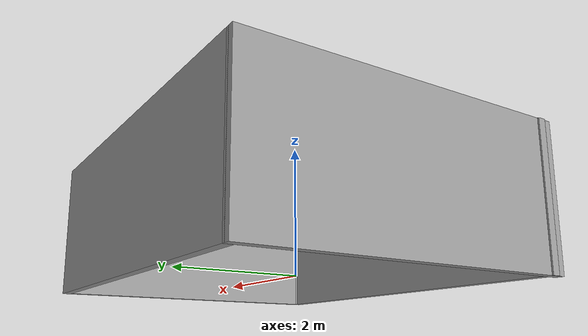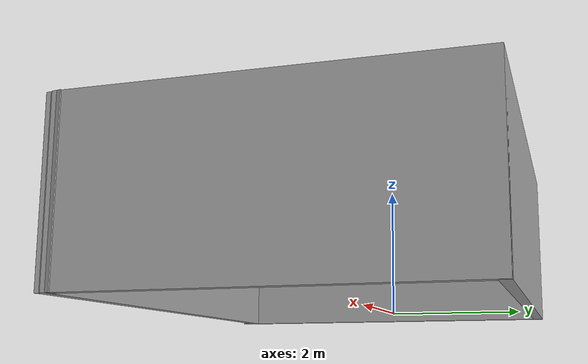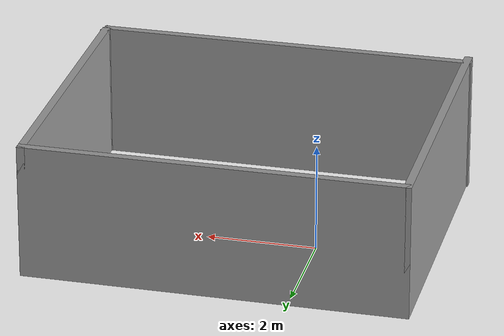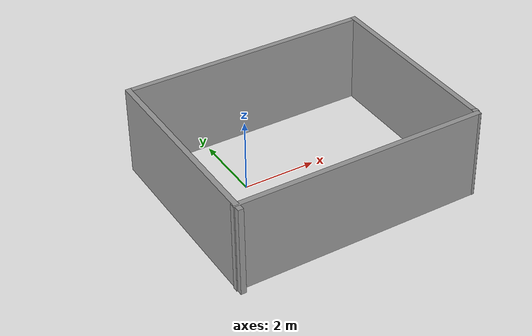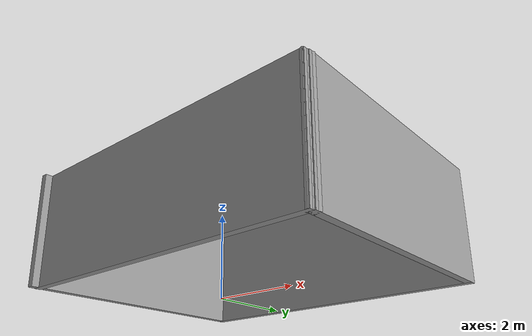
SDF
<?xml version='1.0'?>
<sdf version='1.6'>
  <model name='trial_2'>
    <pose frame=''>1.34049 -0.6 0 0 -0 0</pose>
    <link name='Wall_0'>
      <collision name='Wall_0_Collision'>
        <geometry>
          <box>
            <size>5.75 0.15 2.5</size>
          </box>
        </geometry>
        <pose frame=''>0 0 1.25 0 -0 0</pose>
      </collision>
      <visual name='Wall_0_Visual'>
        <pose frame=''>0 0 1.25 0 -0 0</pose>
        <geometry>
          <box>
            <size>5.75 0.15 2.5</size>
          </box>
        </geometry>
        <material>
          <script>
            <uri>file://media/materials/scripts/gazebo.material</uri>
            <name>Gazebo/Grey</name>
          </script>
          <ambient>1 1 1 1</ambient>
        </material>
        <meta>
          <layer>0</layer>
        </meta>
      </visual>
      <pose frame=''>-3.42049 0 0 0 -0 1.5708</pose>
    </link>
    <link name='Wall_1'>
      <collision name='Wall_1_Collision'>
        <geometry>
          <box>
            <size>7 0.15 2.5</size>
          </box>
        </geometry>
        <pose frame=''>0 0 1.25 0 -0 0</pose>
      </collision>
      <visual name='Wall_1_Visual'>
        <pose frame=''>0 0 1.25 0 -0 0</pose>
        <geometry>
          <box>
            <size>7 0.15 2.5</size>
          </box>
        </geometry>
        <material>
          <script>
            <uri>file://media/materials/scripts/gazebo.material</uri>
            <name>Gazebo/Grey</name>
          </script>
          <ambient>1 1 1 1</ambient>
        </material>
        <meta>
          <layer>0</layer>
        </meta>
      </visual>
      <pose frame=''>0.004513 2.8 0 0 -0 0</pose>
    </link>
    <link name='Wall_2'>
      <collision name='Wall_2_Collision'>
        <geometry>
          <box>
            <size>5.5 0.15 2.5</size>
          </box>
        </geometry>
        <pose frame=''>0 0 1.25 0 -0 0</pose>
      </collision>
      <visual name='Wall_2_Visual'>
        <pose frame=''>0 0 1.25 0 -0 0</pose>
        <geometry>
          <box>
            <size>5.5 0.15 2.5</size>
          </box>
        </geometry>
        <material>
          <script>
            <uri>file://media/materials/scripts/gazebo.material</uri>
            <name>Gazebo/Grey</name>
          </script>
          <ambient>1 1 1 1</ambient>
        </material>
        <meta>
          <layer>0</layer>
        </meta>
      </visual>
      <pose frame=''>3.42951 0.125 0 0 -0 -1.5708</pose>
    </link>
    <link name='Wall_3'>
      <collision name='Wall_3_Collision'>
        <geometry>
          <box>
            <size>0.25 0.15 2.5</size>
          </box>
        </geometry>
        <pose frame=''>0 0 1.25 0 -0 0</pose>
      </collision>
      <visual name='Wall_3_Visual'>
        <pose frame=''>0 0 1.25 0 -0 0</pose>
        <geometry>
          <box>
            <size>0.25 0.15 2.5</size>
          </box>
        </geometry>
        <material>
          <script>
            <uri>file://media/materials/scripts/gazebo.material</uri>
            <name>Gazebo/Grey</name>
          </script>
          <ambient>1 1 1 1</ambient>
        </material>
        <meta>
          <layer>0</layer>
        </meta>
      </visual>
      <pose frame=''>3.41657 -2.5983 0 0 -0 -1.8326</pose>
    </link>
    <link name='Wall_4'>
      <collision name='Wall_4_Collision'>
        <geometry>
          <box>
            <size>7 0.15 2.5</size>
          </box>
        </geometry>
        <pose frame=''>0 0 1.25 0 -0 0</pose>
      </collision>
      <visual name='Wall_4_Visual'>
        <pose frame=''>0 0 1.25 0 -0 0</pose>
        <geometry>
          <box>
            <size>7 0.15 2.5</size>
          </box>
        </geometry>
        <material>
          <script>
            <uri>file://media/materials/scripts/gazebo.material</uri>
            <name>Gazebo/Grey</name>
          </script>
          <ambient>1 1 1 1</ambient>
        </material>
        <meta>
          <layer>0</layer>
        </meta>
      </visual>
      <pose frame=''>-0.021369 -2.64659 0 0 -0 3.14159</pose>
    </link>
    <static>1</static>
  </model>
</sdf>
